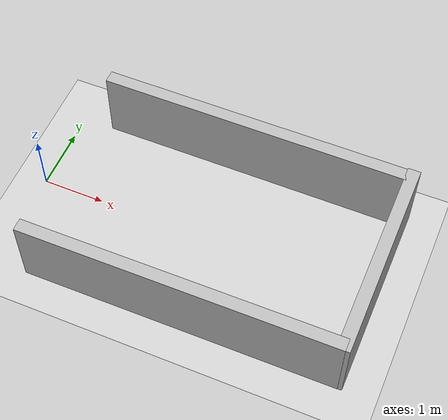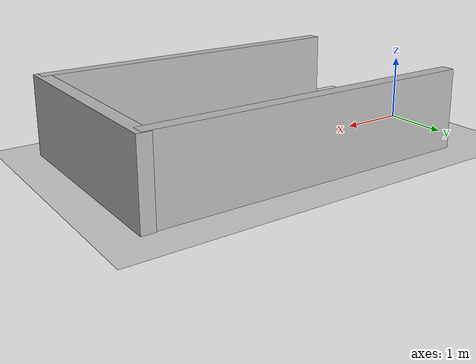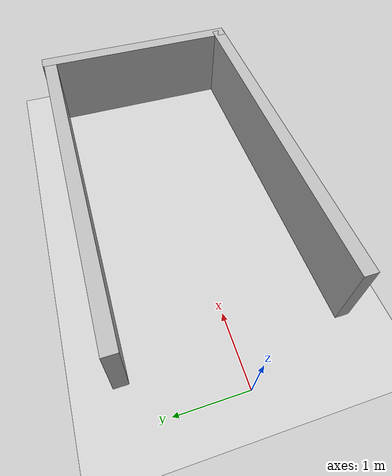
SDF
<?xml version="1.0"?>
<sdf version="1.6">
  <world name="v2-04f-maneuver-s4810">
    <gravity>0 0 -9.81</gravity>
    <physics name="v2_deterministic" type="ode">
      <max_step_size>0.002</max_step_size>
      <real_time_update_rate>500</real_time_update_rate>
    </physics>
    <include>
      <uri>model://sun</uri>
    </include>
    <include>
      <uri>model://ground_plane</uri>
    </include>
    <model name="bay-left">
      <static>true</static>
      <pose>3.003596736 1.489189404 0.600000000 0 0 -0.002623475</pose>
      <link name="link">
        <collision name="collision">
          <geometry>
            <box>
              <size>5.000000 0.200000 1.200000</size>
            </box>
          </geometry>
        </collision>
        <visual name="visual">
          <geometry>
            <box>
              <size>5.000000 0.200000 1.200000</size>
            </box>
          </geometry>
        </visual>
      </link>
    </model>
    <model name="bay-right">
      <static>true</static>
      <pose>3.010793899 -1.508929435 0.600000000 0 0 0.003364289</pose>
      <link name="link">
        <collision name="collision">
          <geometry>
            <box>
              <size>5.000000 0.200000 1.200000</size>
            </box>
          </geometry>
        </collision>
        <visual name="visual">
          <geometry>
            <box>
              <size>5.000000 0.200000 1.200000</size>
            </box>
          </geometry>
        </visual>
      </link>
    </model>
    <model name="bay-back">
      <static>true</static>
      <pose>5.479360643 0.003360214 0.600000000 0 0 -0.001316556</pose>
      <link name="link">
        <collision name="collision">
          <geometry>
            <box>
              <size>0.200000 3.200000 1.200000</size>
            </box>
          </geometry>
        </collision>
        <visual name="visual">
          <geometry>
            <box>
              <size>0.200000 3.200000 1.200000</size>
            </box>
          </geometry>
        </visual>
      </link>
    </model>
  </world>
</sdf>
